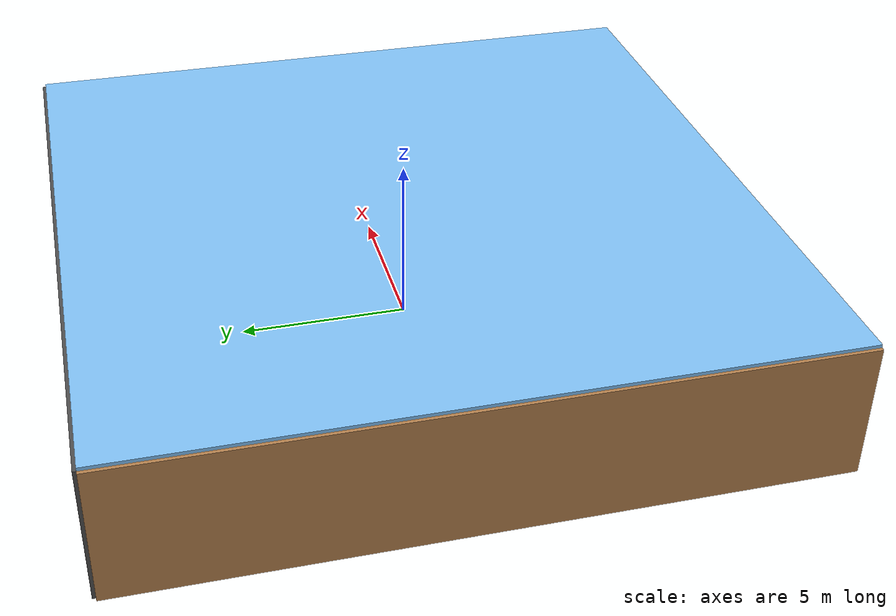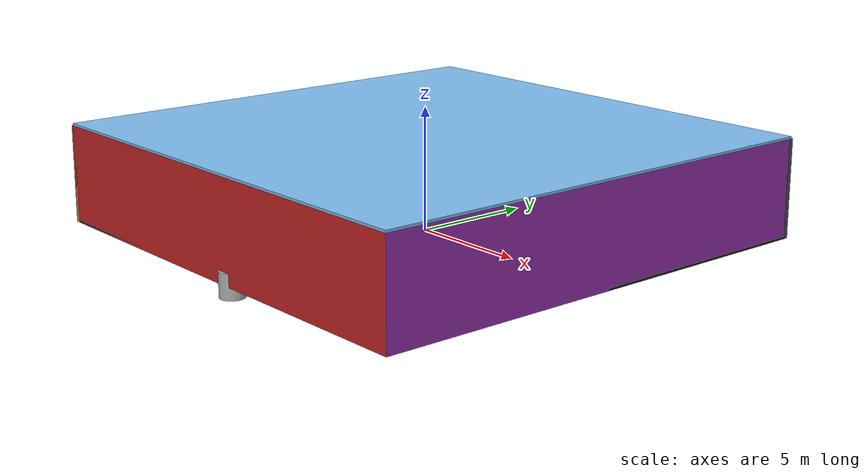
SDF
<sdf version="1.4">
 <world name="default">
  <physics type="ode">
   <max_step_size>0.001</max_step_size>
   <real_time_factor>1</real_time_factor>
   <real_time_update_rate>1000</real_time_update_rate>
   <gravity>0 0 -9.8</gravity>
  </physics>
  <scene><ambient>0.4 0.4 0.4 1</ambient><background>0.7 0.7 0.7 1</background><shadows>1</shadows></scene>
  <model name="Surrounding">
   <static>1</static>
   <link name="Ceiling">
    <collision name="Ceiling_Collision"><geometry><box><size>20 20 0.1</size></box></geometry></collision>
    <visual name="Ceiling_Visual">
     <geometry><box><size>20 20 0.1</size></box></geometry>
     <material>
      <script><uri>file://media/materials/scripts/gazebo.material</uri><name>Gazebo/SkyBlue</name></script>
     </material>
    </visual>
    <pose>0 0 4.05 0 0 0</pose>
   </link>
   <link name="Wall_South">
    <collision name="Wall_South_Collision">
     <geometry><box><size>20 0 4</size></box></geometry>
     <pose>0 0 2 0 -0 0</pose>
    </collision>
    <visual name="Wall_South_Visual">
     <pose>0 0 2 0 -0 0</pose>
     <geometry><box><size>20 0 4</size></box></geometry>
     <material>
      <script><uri>file://media/materials/scripts/gazebo.material</uri><name>Gazebo/Red</name></script>
     </material>
    </visual>
    <velocity_decay><linear>0</linear><angular>0</angular></velocity_decay>
    <pose>0 -10 0 0 -0 0</pose>
   </link>
   <link name="Wall_East">
    <collision name="Wall_21_Collision">
     <geometry><box><size>20 0 4</size></box></geometry>
     <pose>0 0 2 0 -0 0</pose>
    </collision>
    <visual name="Wall_21_Visual">
     <pose>0 0 2 0 -0 0</pose>
     <geometry><box><size>20 0 4</size></box></geometry>
     <material>
      <script><uri>file://media/materials/scripts/gazebo.material</uri><name>Gazebo/Purple</name></script>
     </material>
    </visual>
    <velocity_decay><linear>0</linear><angular>0</angular></velocity_decay>
    <pose>10 0 0 0 -0 1.5708</pose>
   </link>
   <link name="Wall_North">
    <collision name="Wall_22_Collision">
     <geometry><box><size>20 0.2 4</size></box></geometry>
     <pose>0 0 2 0 -0 0</pose>
    </collision>
    <visual name="Wall_22_Visual">
     <pose>0 0 2 0 -0 0</pose>
     <geometry><box><size>20 0.2 4</size></box></geometry>
     <material>
      <script><uri>file://media/materials/scripts/gazebo.material</uri><name>Gazebo/DarkGrey</name></script>
     </material>
    </visual>
    <velocity_decay><linear>0</linear><angular>0</angular></velocity_decay>
    <pose>0 10 0 0 -0 0</pose>
   </link>
   <link name="Wall_West">
    <collision name="Wall_23_Collision">
     <geometry><box><size>20 0.2 4</size></box></geometry>
     <pose>0 0 2 0 -0 0</pose>
    </collision>
    <visual name="Wall_23_Visual">
     <pose>0 0 2 0 -0 0</pose>
     <geometry><box><size>20 0.2 4</size></box></geometry>
     <material>
      <script><uri>file://media/materials/scripts/gazebo.material</uri><name>Gazebo/WoodPallet</name></script>
     </material>
    </visual>
    <velocity_decay><linear>0</linear><angular>0</angular></velocity_decay>
    <pose>-10 0 0 0 0 -1.5708</pose>
   </link>
   <link name="Ground_link">
    <collision name="collision">
     <pose>0 0 .05 0 -0 0</pose>
     <geometry><box><size>20 20 0.1</size></box></geometry>
    </collision>
    <visual name="visual">
     <pose>0 0 .05 0 -0 0</pose>
     <geometry><box><size>20 20 0.1</size></box></geometry>
     <material>
      <script><uri>file://media/materials/scripts/gazebo.material</uri><name>Gazebo/Black</name></script>
     </material>
    </visual>
   </link>
   <static>1</static>
  </model>
  <spherical_coordinates>
   <surface_model>EARTH_WGS84</surface_model>
   <latitude_deg>0</latitude_deg>
   <longitude_deg>0</longitude_deg>
   <elevation>0</elevation>
   <heading_deg>0</heading_deg>
  </spherical_coordinates>
  <light name="lightball_0" type="diffuse">
   <diffuse>0.8 0.8 0.8 1</diffuse>
   <specular>0.2 0.2 0.2 1</specular>
   <attenuation>
    <range>100</range>
    <constant>0.7</constant>
    <linear>0.01</linear>
    <quadratic>0.001</quadratic>
   </attenuation>
   <direction>-0.5 0.1 -0.9</direction>
   <pose>-9.14789714673 -3.73432560638 1.60620998291 0 0 0</pose>
  </light>
  <light name="lightball_1" type="diffuse">
   <diffuse>0.8 0.8 0.8 1</diffuse>
   <specular>0.2 0.2 0.2 1</specular>
   <attenuation>
    <range>100</range>
    <constant>0.7</constant>
    <linear>0.01</linear>
    <quadratic>0.001</quadratic>
   </attenuation>
   <direction>-0.5 0.1 -0.9</direction>
   <pose>-5.72864460578 6.03601697303 1.71307445042 0 0 0</pose>
  </light>
  <light name="lightball_2" type="diffuse">
   <diffuse>0.8 0.8 0.8 1</diffuse>
   <specular>0.2 0.2 0.2 1</specular>
   <attenuation>
    <range>100</range>
    <constant>0.7</constant>
    <linear>0.01</linear>
    <quadratic>0.001</quadratic>
   </attenuation>
   <direction>-0.5 0.1 -0.9</direction>
   <pose>-9.86598319229 5.29597906763 0.543737507248 0 0 0</pose>
  </light>
  <light name="lightball_3" type="diffuse">
   <diffuse>0.8 0.8 0.8 1</diffuse>
   <specular>0.2 0.2 0.2 1</specular>
   <attenuation>
    <range>100</range>
    <constant>0.7</constant>
    <linear>0.01</linear>
    <quadratic>0.001</quadratic>
   </attenuation>
   <direction>-0.5 0.1 -0.9</direction>
   <pose>-0.738083699791 3.43492327481 2.65338025245 0 0 0</pose>
  </light>
  <light name="lightball_4" type="diffuse">
   <diffuse>0.8 0.8 0.8 1</diffuse>
   <specular>0.2 0.2 0.2 1</specular>
   <attenuation>
    <range>100</range>
    <constant>0.7</constant>
    <linear>0.01</linear>
    <quadratic>0.001</quadratic>
   </attenuation>
   <direction>-0.5 0.1 -0.9</direction>
   <pose>-9.15931673205 1.38790299649 3.60856449917 0 0 0</pose>
  </light>
  <light name="lightball_5" type="diffuse">
   <diffuse>0.8 0.8 0.8 1</diffuse>
   <specular>0.2 0.2 0.2 1</specular>
   <attenuation>
    <range>100</range>
    <constant>0.7</constant>
    <linear>0.01</linear>
    <quadratic>0.001</quadratic>
   </attenuation>
   <direction>-0.5 0.1 -0.9</direction>
   <pose>-8.96209645155 -4.36215808194 2.10384507635 0 0 0</pose>
  </light>
  <light name="lightball_6" type="diffuse">
   <diffuse>0.8 0.8 0.8 1</diffuse>
   <specular>0.2 0.2 0.2 1</specular>
   <attenuation>
    <range>100</range>
    <constant>0.7</constant>
    <linear>0.01</linear>
    <quadratic>0.001</quadratic>
   </attenuation>
   <direction>-0.5 0.1 -0.9</direction>
   <pose>2.54341179875 -4.53408703265 2.50805744282 0 0 0</pose>
  </light>
  <light name="lightball_7" type="diffuse">
   <diffuse>0.8 0.8 0.8 1</diffuse>
   <specular>0.2 0.2 0.2 1</specular>
   <attenuation>
    <range>100</range>
    <constant>0.7</constant>
    <linear>0.01</linear>
    <quadratic>0.001</quadratic>
   </attenuation>
   <direction>-0.5 0.1 -0.9</direction>
   <pose>-3.60247543963 -7.78302421578 2.47767960686 0 0 0</pose>
  </light>
  <light name="lightball_8" type="diffuse">
   <diffuse>0.8 0.8 0.8 1</diffuse>
   <specular>0.2 0.2 0.2 1</specular>
   <attenuation>
    <range>100</range>
    <constant>0.7</constant>
    <linear>0.01</linear>
    <quadratic>0.001</quadratic>
   </attenuation>
   <direction>-0.5 0.1 -0.9</direction>
   <pose>8.39381385154 -5.05495455023 3.66180547388 0 0 0</pose>
  </light>
  <light name="lightball_9" type="diffuse">
   <diffuse>0.8 0.8 0.8 1</diffuse>
   <specular>0.2 0.2 0.2 1</specular>
   <attenuation>
    <range>100</range>
    <constant>0.7</constant>
    <linear>0.01</linear>
    <quadratic>0.001</quadratic>
   </attenuation>
   <direction>-0.5 0.1 -0.9</direction>
   <pose>3.00168916193 9.52559050695 1.64546396682 0 0 0</pose>
  </light>
  <light name="lightball_10" type="diffuse">
   <diffuse>0.8 0.8 0.8 1</diffuse>
   <specular>0.2 0.2 0.2 1</specular>
   <attenuation>
    <range>100</range>
    <constant>0.7</constant>
    <linear>0.01</linear>
    <quadratic>0.001</quadratic>
   </attenuation>
   <direction>-0.5 0.1 -0.9</direction>
   <pose>-5.6334656147 8.54109022799 1.28350955897 0 0 0</pose>
  </light>
  <light name="lightball_11" type="diffuse">
   <diffuse>0.8 0.8 0.8 1</diffuse>
   <specular>0.2 0.2 0.2 1</specular>
   <attenuation>
    <range>100</range>
    <constant>0.7</constant>
    <linear>0.01</linear>
    <quadratic>0.001</quadratic>
   </attenuation>
   <direction>-0.5 0.1 -0.9</direction>
   <pose>-8.8332174019 9.39356605246 1.94089086482 0 0 0</pose>
  </light>
  <include>
   <uri>model://construction_cone</uri>
   <pose>-2.12764980773 -4.92021998058 0 0 0 1.54392110803</pose>
  </include>
  <include>
   <uri>model://textured_shapes</uri>
   <pose>1.22411110093 -8.19090790664 0 0 0 2.8475675904</pose>
  </include>
  <include>
   <uri>model://textured_shapes</uri>
   <pose>4.68225344082 -2.20785050145 0 0 0 2.71520306832</pose>
  </include>
  <include>
   <uri>model://robocup_3Dsim_goal</uri>
   <pose>8.11622883597 -6.79042902745 0 0 0 0.436930474957</pose>
  </include>
 </world>
</sdf>

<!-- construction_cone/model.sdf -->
<sdf version="1.5">
  <model name="Construction Cone">
    <link name="link">
      <collision name="collision">
        <geometry>
          <mesh>
            <scale>10 10 10</scale>
            <uri>file://isr-testbed/construction_cone/meshes/construction_cone.dae</uri>
          </mesh>
        </geometry>
      </collision>
      <visual name="visual">
        <geometry>
          <mesh>
            <scale>10 10 10</scale>
            <uri>file://isr-testbed/construction_cone/meshes/construction_cone.dae</uri>
          </mesh>
        </geometry>
      </visual>
    </link>
  </model>
</sdf>

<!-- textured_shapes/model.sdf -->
<sdf version="1.6">
  <model name="textured_shapes">
    <pose>0 0 0.5 0 0 0</pose>
    <link name="box">
      <pose>0 -1.5 0 0 0 0</pose>
      <collision name="collision">
        <geometry>
          <box>
            <size>1 1 1</size>
          </box>
        </geometry>
      </collision>
      <visual name="visual">
        <geometry>
          <box>
            <size>1 1 1</size>
          </box>
        </geometry>
        <material>
          <script>
            <uri>model://../model_source/models/textured_shapes/materials/scripts</uri>
            <uri>model://../model_source/models/textured_shapes/materials/textures</uri>
            <name>TexturedShape/Squares</name>
          </script>
        </material>
      </visual>
    </link>
    <link name="sphere">
      <collision name="collision">
        <geometry>
          <sphere>
            <radius>0.5</radius>
          </sphere>
        </geometry>
      </collision>
      <visual name="visual">
        <geometry>
          <sphere>
            <radius>0.5</radius>
          </sphere>
        </geometry>
        <material>
          <script>
            <uri>model://../model_source/models/textured_shapes/materials/scripts</uri>
            <uri>model://../model_source/models/textured_shapes/materials/textures</uri>
            <name>TexturedShape/Squares</name>
          </script>
        </material>
      </visual>
    </link>
    <link name="cylinder">
      <pose>0 1.5 0 0 0 0</pose>
      <collision name="collision">
        <geometry>
          <cylinder>
            <radius>0.5</radius>
            <length>1</length>
          </cylinder>
        </geometry>
      </collision>
      <visual name="visual">
        <geometry>
          <cylinder>
            <radius>0.5</radius>
            <length>1</length>
          </cylinder>
        </geometry>
        <material>
          <script>
            <uri>model://../model_source/models/textured_shapes/materials/scripts</uri>
            <uri>model://../model_source/models/textured_shapes/materials/textures</uri>
            <name>TexturedShape/Squares</name>
          </script>
        </material>
      </visual>
    </link>
  </model>
</sdf>

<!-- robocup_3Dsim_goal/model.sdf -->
<sdf version="1.5">
  <model name="robocup_3d_goal">
    <static>true</static>
    <link name="left_post">
      <pose>0 1.05 0.45 0 0 0</pose>
      <collision name="collision">
        <geometry>
          <cylinder>
            <radius>0.05</radius>
            <length>0.9</length>
          </cylinder>
        </geometry>
      </collision>
      <visual name="visual">
        <geometry>
          <cylinder>
            <radius>0.05</radius>
            <length>0.9</length>
          </cylinder>
        </geometry>
        <material>
          <script>
            <uri>file://media/materials/scripts/gazebo.material</uri>
            <name>Gazebo/ZincYellow</name>
          </script>
        </material>
      </visual>
    </link>
    <link name="left_support_horiz_lower">
      <pose>0.30 1.05 0.01 0 0 0</pose>
      <collision name="collision">
        <geometry>
          <box>
            <size>0.50 0.02 0.02</size>
          </box>
        </geometry>
      </collision>
      <visual name="visual">
        <geometry>
          <box>
            <size>0.50 0.02 0.02</size>
          </box>
        </geometry>
        <material>
          <script>
            <uri>file://media/materials/scripts/gazebo.material</uri>
            <name>Gazebo/White</name>
          </script>
        </material>
      </visual>
    </link>
    <link name="left_support_horiz_upper">
      <pose>0.30 1.05 0.79 0 0 0</pose>
      <collision name="collision">
        <geometry>
          <box>
            <size>0.50 0.02 0.02</size>
          </box>
        </geometry>
      </collision>
      <visual name="visual">
        <geometry>
          <box>
            <size>0.50 0.02 0.02</size>
          </box>
        </geometry>
        <material>
          <script>
            <uri>file://media/materials/scripts/gazebo.material</uri>
            <name>Gazebo/White</name>
          </script>
        </material>
      </visual>
    </link>
    <link name="left_support_vertical">
      <pose>0.56 1.05 0.4 0 1.5708 0</pose>
      <collision name="collision">
        <geometry>
          <box>
            <size>0.80 0.02 0.02</size>
          </box>
        </geometry>
      </collision>
      <visual name="visual">
        <geometry>
          <box>
            <size>0.80 0.02 0.02</size>
          </box>
        </geometry>
        <material>
          <script>
            <uri>file://media/materials/scripts/gazebo.material</uri>
            <name>Gazebo/White</name>
          </script>
        </material>
      </visual>
    </link>
    <link name="right_support_horiz_lower">
      <pose>0.30 -1.05 0.01 0 0 0</pose>
      <collision name="collision">
        <geometry>
          <box>
            <size>0.50 0.02 0.02</size>
          </box>
        </geometry>
      </collision>
      <visual name="visual">
        <geometry>
          <box>
            <size>0.50 0.02 0.02</size>
          </box>
        </geometry>
        <material>
          <script>
            <uri>file://media/materials/scripts/gazebo.material</uri>
            <name>Gazebo/White</name>
          </script>
        </material>
      </visual>
    </link>
    <link name="right_support_horiz_upper">
      <pose>0.30 -1.05 0.79 0 0 0</pose>
      <collision name="collision">
        <geometry>
          <box>
            <size>0.50 0.02 0.02</size>
          </box>
        </geometry>
      </collision>
      <visual name="visual">
        <geometry>
          <box>
            <size>0.50 0.02 0.02</size>
          </box>
        </geometry>
        <material>
          <script>
            <uri>file://media/materials/scripts/gazebo.material</uri>
            <name>Gazebo/White</name>
          </script>
        </material>
      </visual>
    </link>
    <link name="right_support_vertical">
      <pose>0.56 -1.05 0.4 0 1.5708 0</pose>
      <collision name="collision">
        <geometry>
          <box>
            <size>0.80 0.02 0.02</size>
          </box>
        </geometry>
      </collision>
      <visual name="visual">
        <geometry>
          <box>
            <size>0.80 0.02 0.02</size>
          </box>
        </geometry>
        <material>
          <script>
            <uri>file://media/materials/scripts/gazebo.material</uri>
            <name>Gazebo/White</name>
          </script>
        </material>
      </visual>
    </link>
    <link name="center_support_horiz_lower">
      <pose>0.56 0 0.01 0 1.5708 0</pose>
      <collision name="collision">
        <geometry>
          <box>
            <size>0.02 2.08 0.02</size>
          </box>
        </geometry>
      </collision>
      <visual name="visual">
        <geometry>
          <box>
            <size>0.02 2.08 0.02</size>
          </box>
        </geometry>
        <material>
          <script>
            <uri>file://media/materials/scripts/gazebo.material</uri>
            <name>Gazebo/White</name>
          </script>
        </material>
      </visual>
    </link>
    <link name="center_support_horiz_upper">
      <pose>0.56 0 0.79 0 1.5708 0</pose>
      <collision name="collision">
        <geometry>
          <box>
            <size>0.02 2.08 0.02</size>
          </box>
        </geometry>
      </collision>
      <visual name="visual">
        <geometry>
          <box>
            <size>0.02 2.08 0.02</size>
          </box>
        </geometry>
        <material>
          <script>
            <uri>file://media/materials/scripts/gazebo.material</uri>
            <name>Gazebo/White</name>
          </script>
        </material>
      </visual>
    </link>
    <link name="right_post">
      <pose>0 -1.05 0.45 0 0 0</pose>
      <collision name="collision">
        <geometry>
          <cylinder>
            <radius>0.05</radius>
            <length>0.9</length>
          </cylinder>
        </geometry>
      </collision>
      <visual name="visual">
        <geometry>
          <cylinder>
            <radius>0.05</radius>
            <length>0.9</length>
          </cylinder>
        </geometry>
        <material>
          <script>
            <uri>file://media/materials/scripts/gazebo.material</uri>
            <name>Gazebo/ZincYellow</name>
          </script>
        </material>
      </visual>
    </link>
    <link name="crossbar">
      <pose>0 0 0.85 1.57 1.57 0</pose>
      <collision name="collision">
        <geometry>
          <cylinder>
            <radius>0.05</radius>
            <length>2.0</length>
          </cylinder>
        </geometry>
      </collision>
      <visual name="visual">
        <geometry>
          <cylinder>
            <radius>0.05</radius>
            <length>2.0</length>
          </cylinder>
        </geometry>
        <material>
          <script>
            <uri>file://media/materials/scripts/gazebo.material</uri>
            <name>Gazebo/ZincYellow</name>
          </script>
        </material>
      </visual>
    </link>
    <link name="center_net">
      <pose>0.56 0 0.40 0 0 0</pose>
      <collision name="collision">
        <geometry>
          <box>
            <size>0.01 2.1 0.80</size>
          </box>
        </geometry>
      </collision>
      <visual name="visual">
        <geometry>
          <box>
            <size>0.01 2.1 0.80</size>
          </box>
        </geometry>
        <material>
          <script>
            <uri>model://../model_source/models/robocup09_spl_field/materials/scripts/</uri>
            <uri>model://../model_source/models/robocup09_spl_field/materials/textures/</uri>
            <name>RoboCup/Net</name>
          </script>
        </material>
      </visual>
    </link>
    <link name="left_net">
      <pose>0.30 1.05 0.40 0 0 0</pose>
      <collision name="collision">
        <geometry>
          <box>
            <size>0.50 0.01 0.76</size>
          </box>
        </geometry>
      </collision>
      <visual name="visual">
        <geometry>
          <box>
            <size>0.50 0.01 0.76</size>
          </box>
        </geometry>
        <material>
          <script>
            <uri>model://../model_source/models/robocup09_spl_field/materials/scripts/</uri>
            <uri>model://../model_source/models/robocup09_spl_field/materials/textures/</uri>
            <name>RoboCup/Net</name>
          </script>
        </material>
      </visual>
    </link>
    <link name="right_net">
      <pose>0.30 -1.05 0.40 0 0 0</pose>
      <collision name="collision">
        <geometry>
          <box>
            <size>0.50 0.01 0.76</size>
          </box>
        </geometry>
      </collision>
      <visual name="visual">
        <geometry>
          <box>
            <size>0.50 0.01 0.76</size>
          </box>
        </geometry>
        <material>
          <script>
            <uri>model://../model_source/models/robocup09_spl_field/materials/scripts/</uri>
            <uri>model://../model_source/models/robocup09_spl_field/materials/textures/</uri>
            <name>RoboCup/Net</name>
          </script>
        </material>
      </visual>
    </link>
  </model>
</sdf>
